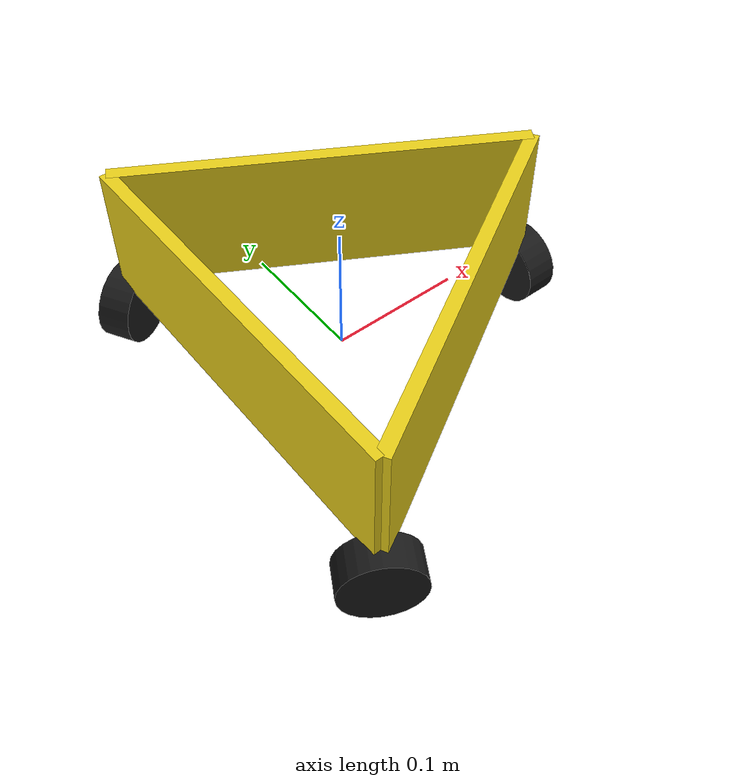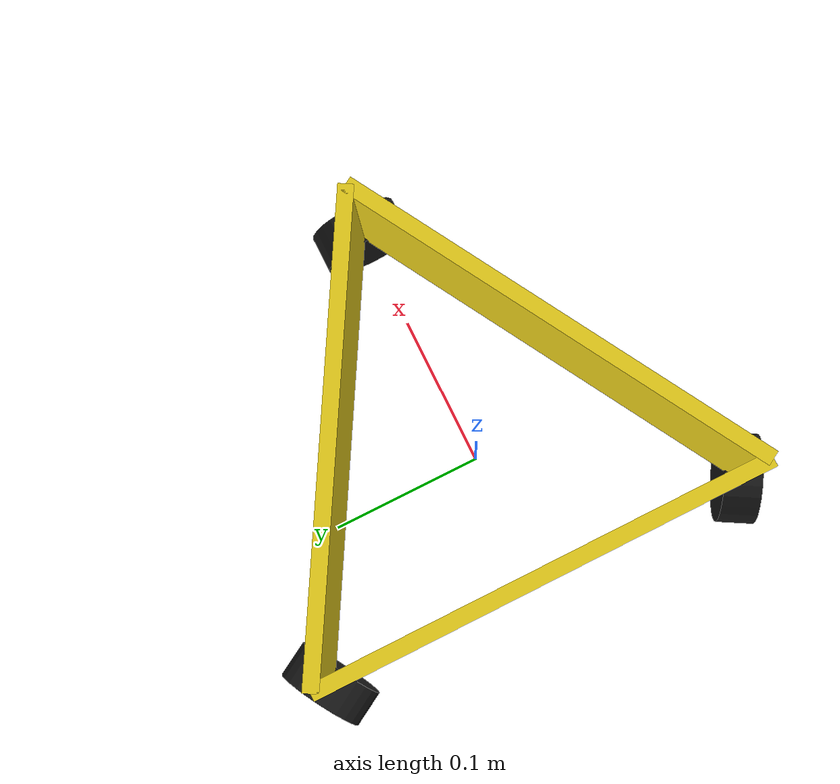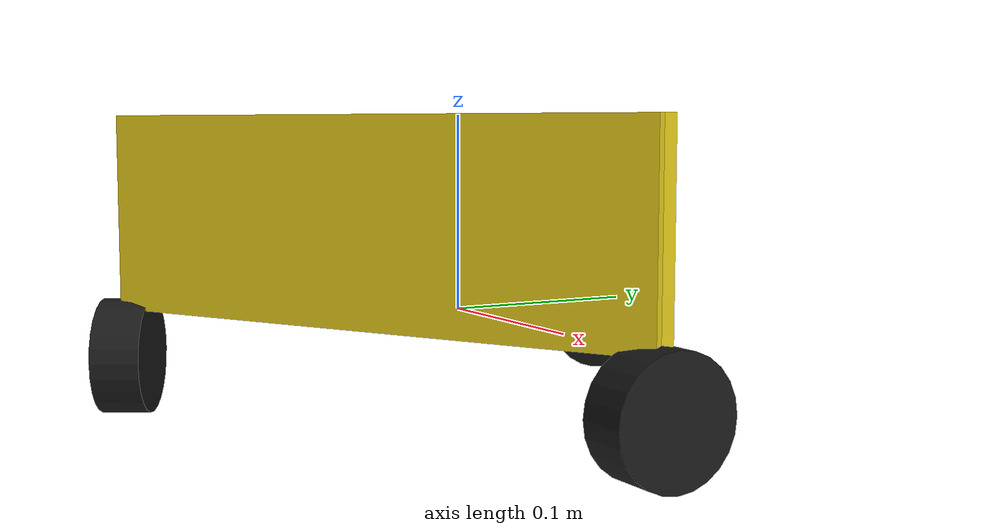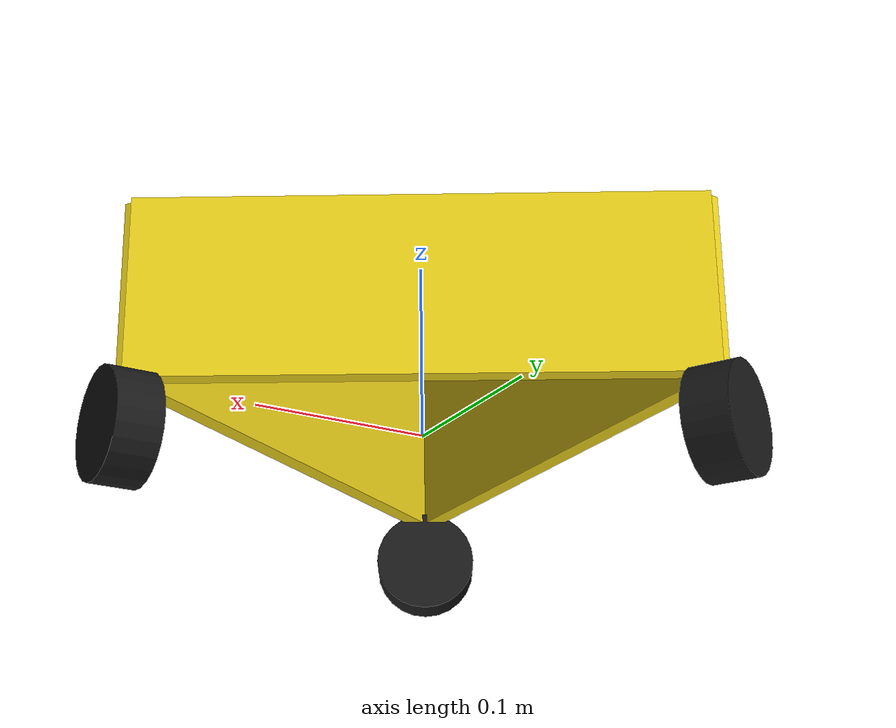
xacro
<?xml version="1.0"?>
<robot xmlns:xacro="http://www.ros.org/wiki/xacro">

  <xacro:include filename="inertial_macros.xacro" />

  <!-- TUNABLE DIMENSIONS — measure your real robot and edit these       -->
  <!-- (all in meters / kg unless noted). Values below are ESTIMATES     -->
  <!-- based on your photos — replace with real measurements ASAP.       -->
  <xacro:property name="triangle_side"   value="0.30"/>   <!-- edge length of the triangle -->
  <xacro:property name="wall_height"     value="0.10"/>   <!-- height of the side panels -->
  <xacro:property name="wall_thickness"  value="0.01"/>
  <xacro:property name="chassis_mass"    value="2.0"/>

  <xacro:property name="wheel_radius"    value="0.03"/>   <!-- omni wheel radius -->
  <xacro:property name="wheel_width"     value="0.025"/>
  <xacro:property name="wheel_mass"      value="0.15"/>
  <xacro:property name="wheel_angle_offset" value="0"/>

  <!-- circumradius of an equilateral triangle: side / sqrt(3) -->
  <xacro:property name="circumradius" value="${triangle_side / 1.7320508}"/>

  <!-- BASE LINK — required massless root, matches my_bot convention     -->
  <link name="base_link"></link>

  <joint name="chassis_joint" type="fixed">
    <parent link="base_link"/>
    <child link="chassis"/>
    <origin xyz="0 0 0"/>
  </joint>

  <!-- CHASSIS — collision approximated as a cylinder (circumscribed),   -->
  <!-- visual built from 3 flat wall panels arranged as a triangle       -->
  <!-- (mirrors the real robot's 3-panel construction seen in photos)    -->
  <link name="chassis">

    <!-- Visual: three wall panels, one per triangle edge -->
    <xacro:macro name="wall_panel" params="angle_deg">
      <visual>
        <origin xyz="${(circumradius*0.5)*cos(angle_deg*pi/180)} ${(circumradius*0.5)*sin(angle_deg*pi/180)} ${wall_height/2}"
                rpy="0 0 ${angle_deg*pi/180 + pi/2}"/>
        <geometry>
          <box size="${triangle_side} ${wall_thickness} ${wall_height}"/>
        </geometry>
        <material name="yellow">
          <color rgba="0.9 0.8 0.1 1"/>
        </material>
      </visual>
    </xacro:macro>

    <xacro:wall_panel angle_deg="${60  + wheel_angle_offset}"/>
    <xacro:wall_panel angle_deg="${180 + wheel_angle_offset}"/>
    <xacro:wall_panel angle_deg="${300 + wheel_angle_offset}"/>

    <!-- Collision: single cylinder, simpler + more stable for the physics engine -->
    <collision>
      <origin xyz="0 0 ${wall_height/2}" rpy="0 0 0"/>
      <geometry>
        <cylinder radius="${circumradius}" length="${wall_height}"/>
      </geometry>
    </collision>

    <xacro:inertial_cylinder mass="${chassis_mass}" length="${wall_height}" radius="${circumradius}">
      <origin xyz="0 0 ${wall_height/2}" rpy="0 0 0"/>
    </xacro:inertial_cylinder>
  </link>

  <gazebo reference="chassis">
    <material>Gazebo/Yellow</material>
  </gazebo>

  <!-- WHEELS — 3x, placed at the triangle's vertices, VISUAL ONLY.      -->
  <!-- No wheel joints/friction are simulated — see PlanarMove plugin     -->
  <!-- below, which moves the whole body directly from /cmd_vel.         -->
  <xacro:macro name="omni_wheel_visual" params="prefix angle_deg">
    <link name="${prefix}_wheel">
      <visual>
        <origin xyz="0 0 0" rpy="0 0 0"/>
        <geometry>
          <cylinder radius="${wheel_radius}" length="${wheel_width}"/>
        </geometry>
        <material name="black">
          <color rgba="0.1 0.1 0.1 1"/>
        </material>
      </visual>
      <collision>
        <origin xyz="0 0 0" rpy="0 0 0"/>
        <geometry>
          <cylinder radius="${wheel_radius}" length="${wheel_width}"/>
        </geometry>
      </collision>
      <xacro:inertial_cylinder mass="${wheel_mass}" length="${wheel_width}" radius="${wheel_radius}">
        <origin xyz="0 0 0" rpy="0 0 0"/>
      </xacro:inertial_cylinder>
    </link>

    <joint name="${prefix}_wheel_joint" type="fixed">
      <parent link="chassis"/>
      <child link="${prefix}_wheel"/>
      <origin xyz="${circumradius*cos(angle_deg*pi/180)} ${circumradius*sin(angle_deg*pi/180)} ${-wheel_radius+0.005}"
              rpy="0 ${pi/2} ${angle_deg*pi/180}"/>
    </joint>

    <gazebo reference="${prefix}_wheel">
      <material>Gazebo/Black</material>
    </gazebo>
  </xacro:macro>

  <xacro:omni_wheel_visual prefix="wheel1" angle_deg="${0   + wheel_angle_offset}"/>
  <xacro:omni_wheel_visual prefix="wheel2" angle_deg="${120 + wheel_angle_offset}"/>
  <xacro:omni_wheel_visual prefix="wheel3" angle_deg="${240 + wheel_angle_offset}"/>

  <!-- NOTE: this robot's Gazebo Harmonic build doesn't ship the         -->
  <!-- PlanarMove system plugin, so holonomic movement is instead        -->
  <!-- provided by a Python ROS 2 node — scripts/fake_planar_move.py —   -->
  <!-- launched separately in launch_sim.launch.py. No Gazebo plugin     -->
  <!-- reference needed here.                                            -->

</robot>

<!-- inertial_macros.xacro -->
<robot xmlns:xacro="http://www.ros.org/wiki/xacro">

  <xacro:macro name="inertial_box" params="mass x y z *origin">
    <inertial>
      <xacro:insert_block name="origin"/>
      <mass value="${mass}" />
      <inertia ixx="${(1/12) * mass * (y*y+z*z)}" ixy="0.0" ixz="0.0"
               iyy="${(1/12) * mass * (x*x+z*z)}" iyz="0.0"
               izz="${(1/12) * mass * (x*x+y*y)}" />
    </inertial>
  </xacro:macro>

  <xacro:macro name="inertial_cylinder" params="mass length radius *origin">
    <inertial>
      <xacro:insert_block name="origin"/>
      <mass value="${mass}" />
      <inertia ixx="${(1/12) * mass * (3*radius*radius + length*length)}" ixy="0.0" ixz="0.0"
               iyy="${(1/12) * mass * (3*radius*radius + length*length)}" iyz="0.0"
               izz="${(1/2) * mass * (radius*radius)}" />
    </inertial>
  </xacro:macro>

  <xacro:macro name="inertial_sphere" params="mass radius *origin">
    <inertial>
      <xacro:insert_block name="origin"/>
      <mass value="${mass}" />
      <inertia ixx="${(2/5) * mass * (radius*radius)}" ixy="0.0" ixz="0.0"
               iyy="${(2/5) * mass * (radius*radius)}" iyz="0.0"
               izz="${(2/5) * mass * (radius*radius)}" />
    </inertial>
  </xacro:macro>

</robot>
